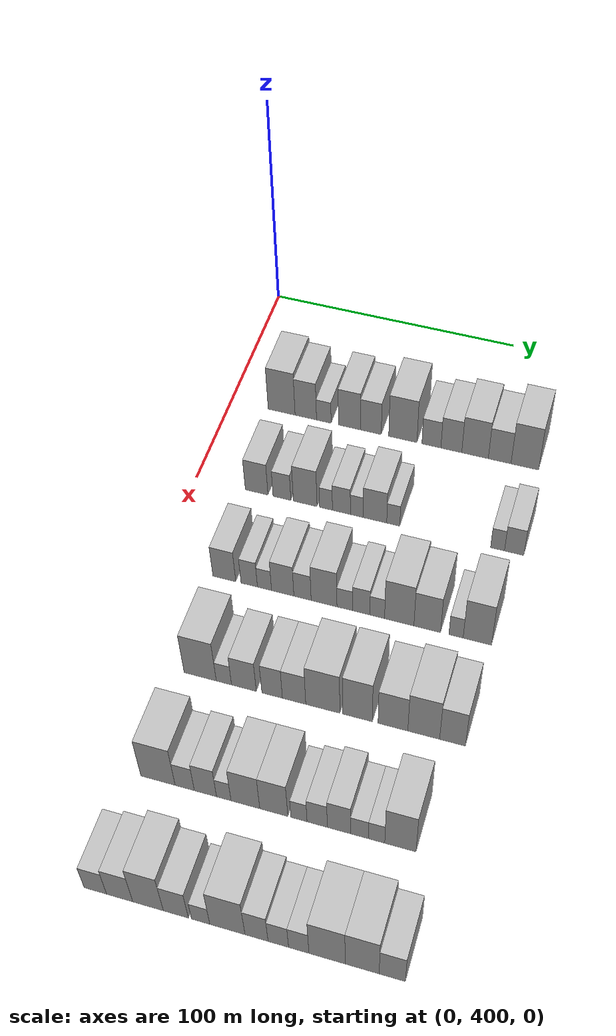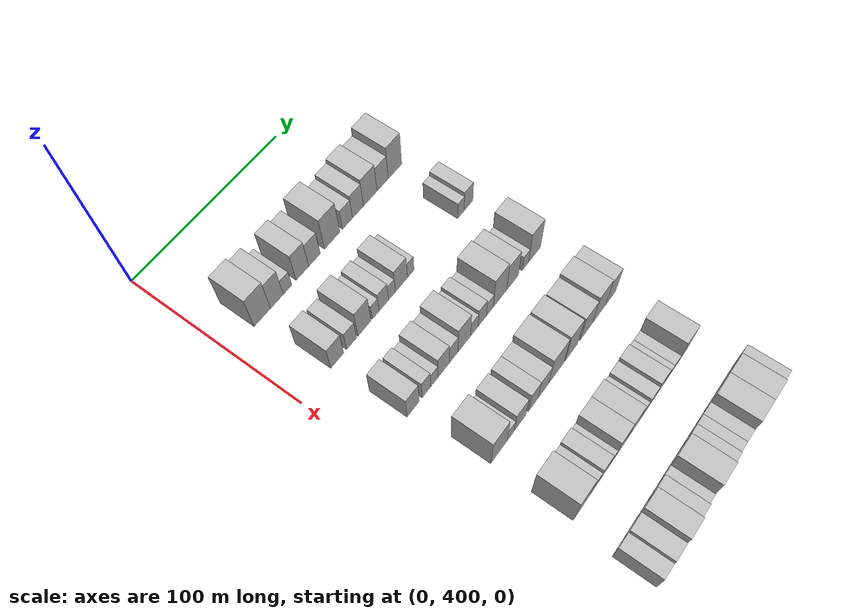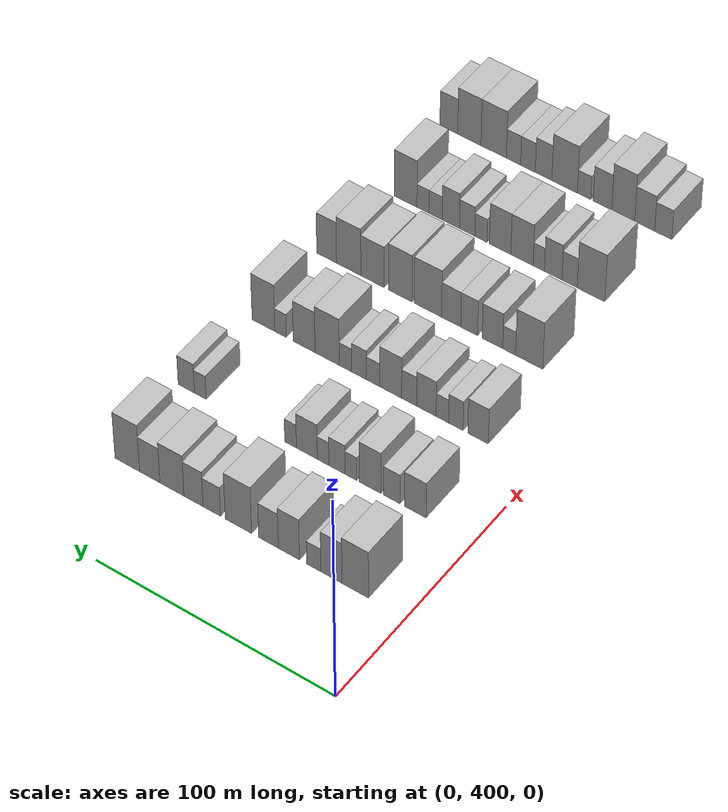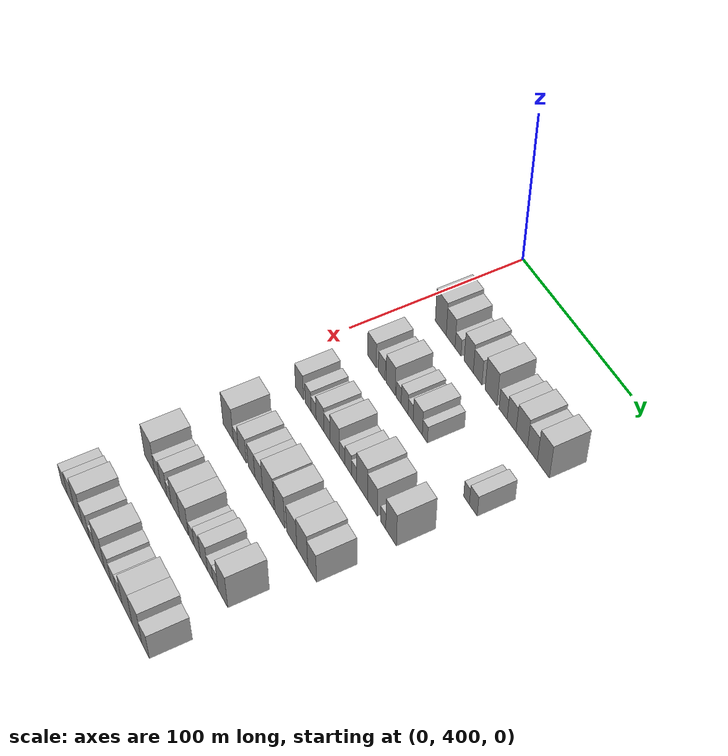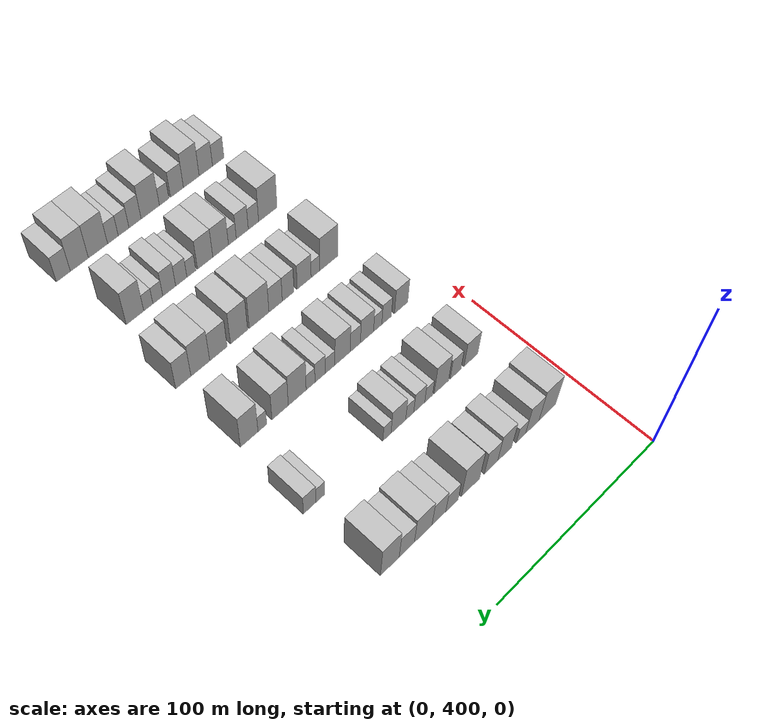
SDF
<sdf version="1.6">
 <world name="default">
  <model name="building_116">
   <static>1</static>
   <pose>50.0000 420.7711 0 0.000000 0.000000 0.000000</pose>
   <link name="link">
    <pose>0 0 12.00 0 0 0</pose>
    <collision name="collision"><geometry><box><size>20.0000 11.0274 24.0000</size></box></geometry></collision>
    <visual name="visual">
     <cast_shadows>0</cast_shadows>
     <geometry><box><size>20.0000 11.0274 24.0000</size></box></geometry>
     <material>
      <script>
       <uri>model://HANNAS_wall/materials/scripts</uri>
       <uri>model://HANNAS_wall/materials/textures</uri>
       <name>vrc/HANNAS_wall</name>
      </script>
     </material>
    </visual>
   </link>
  </model>
  <model name="building_117">
   <static>1</static>
   <pose>50.0000 430.6638 0 0.000000 0.000000 0.000000</pose>
   <link name="link">
    <pose>0 0 10.50 0 0 0</pose>
    <collision name="collision"><geometry><box><size>20.0000 8.7579 21.0000</size></box></geometry></collision>
    <visual name="visual">
     <cast_shadows>0</cast_shadows>
     <geometry><box><size>20.0000 8.7579 21.0000</size></box></geometry>
     <material>
      <script>
       <uri>model://HANNAS_wall/materials/scripts</uri>
       <uri>model://HANNAS_wall/materials/textures</uri>
       <name>vrc/HANNAS_wall</name>
      </script>
     </material>
    </visual>
   </link>
  </model>
  <model name="building_118">
   <static>1</static>
   <pose>50.0000 438.0082 0 0.000000 0.000000 0.000000</pose>
   <link name="link">
    <pose>0 0 6.00 0 0 0</pose>
    <collision name="collision"><geometry><box><size>20.0000 5.9310 12.0000</size></box></geometry></collision>
    <visual name="visual">
     <cast_shadows>0</cast_shadows>
     <geometry><box><size>20.0000 5.9310 12.0000</size></box></geometry>
     <material>
      <script>
       <uri>model://HANNAS_wall/materials/scripts</uri>
       <uri>model://HANNAS_wall/materials/textures</uri>
       <name>vrc/HANNAS_wall</name>
      </script>
     </material>
    </visual>
   </link>
  </model>
  <model name="building_119">
   <static>1</static>
   <pose>50.0000 448.4330 0 0.000000 0.000000 0.000000</pose>
   <link name="link">
    <pose>0 0 10.50 0 0 0</pose>
    <collision name="collision"><geometry><box><size>20.0000 8.9185 21.0000</size></box></geometry></collision>
    <visual name="visual">
     <cast_shadows>0</cast_shadows>
     <geometry><box><size>20.0000 8.9185 21.0000</size></box></geometry>
     <material>
      <script>
       <uri>model://HANNAS_wall/materials/scripts</uri>
       <uri>model://HANNAS_wall/materials/textures</uri>
       <name>vrc/HANNAS_wall</name>
      </script>
     </material>
    </visual>
   </link>
  </model>
  <model name="building_120">
   <static>1</static>
   <pose>50.0000 457.0442 0 0.000000 0.000000 0.000000</pose>
   <link name="link">
    <pose>0 0 9.00 0 0 0</pose>
    <collision name="collision"><geometry><box><size>20.0000 8.3039 18.0000</size></box></geometry></collision>
    <visual name="visual">
     <cast_shadows>0</cast_shadows>
     <geometry><box><size>20.0000 8.3039 18.0000</size></box></geometry>
     <material>
      <script>
       <uri>model://HANNAS_wall/materials/scripts</uri>
       <uri>model://HANNAS_wall/materials/textures</uri>
       <name>vrc/HANNAS_wall</name>
      </script>
     </material>
    </visual>
   </link>
  </model>
  <model name="building_121">
   <static>1</static>
   <pose>50.0000 469.8124 0 0.000000 0.000000 0.000000</pose>
   <link name="link">
    <pose>0 0 12.00 0 0 0</pose>
    <collision name="collision"><geometry><box><size>20.0000 11.2325 24.0000</size></box></geometry></collision>
    <visual name="visual">
     <cast_shadows>0</cast_shadows>
     <geometry><box><size>20.0000 11.2325 24.0000</size></box></geometry>
     <material>
      <script>
       <uri>model://HANNAS_wall/materials/scripts</uri>
       <uri>model://HANNAS_wall/materials/textures</uri>
       <name>vrc/HANNAS_wall</name>
      </script>
     </material>
    </visual>
   </link>
  </model>
  <model name="building_122">
   <static>1</static>
   <pose>50.0000 481.1685 0 0.000000 0.000000 0.000000</pose>
   <link name="link">
    <pose>0 0 7.50 0 0 0</pose>
    <collision name="collision"><geometry><box><size>20.0000 7.4798 15.0000</size></box></geometry></collision>
    <visual name="visual">
     <cast_shadows>0</cast_shadows>
     <geometry><box><size>20.0000 7.4798 15.0000</size></box></geometry>
     <material>
      <script>
       <uri>model://HANNAS_wall/materials/scripts</uri>
       <uri>model://HANNAS_wall/materials/textures</uri>
       <name>vrc/HANNAS_wall</name>
      </script>
     </material>
    </visual>
   </link>
  </model>
  <model name="building_123">
   <static>1</static>
   <pose>50.0000 489.0172 0 0.000000 0.000000 0.000000</pose>
   <link name="link">
    <pose>0 0 9.00 0 0 0</pose>
    <collision name="collision"><geometry><box><size>20.0000 8.2176 18.0000</size></box></geometry></collision>
    <visual name="visual">
     <cast_shadows>0</cast_shadows>
     <geometry><box><size>20.0000 8.2176 18.0000</size></box></geometry>
     <material>
      <script>
       <uri>model://HANNAS_wall/materials/scripts</uri>
       <uri>model://HANNAS_wall/materials/textures</uri>
       <name>vrc/HANNAS_wall</name>
      </script>
     </material>
    </visual>
   </link>
  </model>
  <model name="building_124">
   <static>1</static>
   <pose>50.0000 498.3271 0 0.000000 0.000000 0.000000</pose>
   <link name="link">
    <pose>0 0 10.50 0 0 0</pose>
    <collision name="collision"><geometry><box><size>20.0000 10.4022 21.0000</size></box></geometry></collision>
    <visual name="visual">
     <cast_shadows>0</cast_shadows>
     <geometry><box><size>20.0000 10.4022 21.0000</size></box></geometry>
     <material>
      <script>
       <uri>model://HANNAS_wall/materials/scripts</uri>
       <uri>model://HANNAS_wall/materials/textures</uri>
       <name>vrc/HANNAS_wall</name>
      </script>
     </material>
    </visual>
   </link>
  </model>
  <model name="building_125">
   <static>1</static>
   <pose>50.0000 507.9501 0 0.000000 0.000000 0.000000</pose>
   <link name="link">
    <pose>0 0 9.00 0 0 0</pose>
    <collision name="collision"><geometry><box><size>20.0000 8.8437 18.0000</size></box></geometry></collision>
    <visual name="visual">
     <cast_shadows>0</cast_shadows>
     <geometry><box><size>20.0000 8.8437 18.0000</size></box></geometry>
     <material>
      <script>
       <uri>model://HANNAS_wall/materials/scripts</uri>
       <uri>model://HANNAS_wall/materials/textures</uri>
       <name>vrc/HANNAS_wall</name>
      </script>
     </material>
    </visual>
   </link>
  </model>
  <model name="building_126">
   <static>1</static>
   <pose>50.0000 517.7170 0 0.000000 0.000000 0.000000</pose>
   <link name="link">
    <pose>0 0 12.00 0 0 0</pose>
    <collision name="collision"><geometry><box><size>20.0000 10.6901 24.0000</size></box></geometry></collision>
    <visual name="visual">
     <cast_shadows>0</cast_shadows>
     <geometry><box><size>20.0000 10.6901 24.0000</size></box></geometry>
     <material>
      <script>
       <uri>model://HANNAS_wall/materials/scripts</uri>
       <uri>model://HANNAS_wall/materials/textures</uri>
       <name>vrc/HANNAS_wall</name>
      </script>
     </material>
    </visual>
   </link>
  </model>
  <model name="building_248">
   <static>1</static>
   <pose>90.0000 424.0070 0 0.000000 0.000000 0.000000</pose>
   <link name="link">
    <pose>0 0 9.00 0 0 0</pose>
    <collision name="collision"><geometry><box><size>20.0000 8.9189 18.0000</size></box></geometry></collision>
    <visual name="visual">
     <cast_shadows>0</cast_shadows>
     <geometry><box><size>20.0000 8.9189 18.0000</size></box></geometry>
     <material>
      <script>
       <uri>model://HANNAS_wall/materials/scripts</uri>
       <uri>model://HANNAS_wall/materials/textures</uri>
       <name>vrc/HANNAS_wall</name>
      </script>
     </material>
    </visual>
   </link>
  </model>
  <model name="building_249">
   <static>1</static>
   <pose>90.0000 433.9471 0 0.000000 0.000000 0.000000</pose>
   <link name="link">
    <pose>0 0 7.50 0 0 0</pose>
    <collision name="collision"><geometry><box><size>20.0000 6.9612 15.0000</size></box></geometry></collision>
    <visual name="visual">
     <cast_shadows>0</cast_shadows>
     <geometry><box><size>20.0000 6.9612 15.0000</size></box></geometry>
     <material>
      <script>
       <uri>model://HANNAS_wall/materials/scripts</uri>
       <uri>model://HANNAS_wall/materials/textures</uri>
       <name>vrc/HANNAS_wall</name>
      </script>
     </material>
    </visual>
   </link>
  </model>
  <model name="building_250">
   <static>1</static>
   <pose>90.0000 443.0434 0 0.000000 0.000000 0.000000</pose>
   <link name="link">
    <pose>0 0 10.50 0 0 0</pose>
    <collision name="collision"><geometry><box><size>20.0000 9.2316 21.0000</size></box></geometry></collision>
    <visual name="visual">
     <cast_shadows>0</cast_shadows>
     <geometry><box><size>20.0000 9.2316 21.0000</size></box></geometry>
     <material>
      <script>
       <uri>model://HANNAS_wall/materials/scripts</uri>
       <uri>model://HANNAS_wall/materials/textures</uri>
       <name>vrc/HANNAS_wall</name>
      </script>
     </material>
    </visual>
   </link>
  </model>
  <model name="building_251">
   <static>1</static>
   <pose>90.0000 451.1419 0 0.000000 0.000000 0.000000</pose>
   <link name="link">
    <pose>0 0 6.00 0 0 0</pose>
    <collision name="collision"><geometry><box><size>20.0000 4.9653 12.0000</size></box></geometry></collision>
    <visual name="visual">
     <cast_shadows>0</cast_shadows>
     <geometry><box><size>20.0000 4.9653 12.0000</size></box></geometry>
     <material>
      <script>
       <uri>model://HANNAS_wall/materials/scripts</uri>
       <uri>model://HANNAS_wall/materials/textures</uri>
       <name>vrc/HANNAS_wall</name>
      </script>
     </material>
    </visual>
   </link>
  </model>
  <model name="building_252">
   <static>1</static>
   <pose>90.0000 457.0753 0 0.000000 0.000000 0.000000</pose>
   <link name="link">
    <pose>0 0 7.50 0 0 0</pose>
    <collision name="collision"><geometry><box><size>20.0000 6.9015 15.0000</size></box></geometry></collision>
    <visual name="visual">
     <cast_shadows>0</cast_shadows>
     <geometry><box><size>20.0000 6.9015 15.0000</size></box></geometry>
     <material>
      <script>
       <uri>model://HANNAS_wall/materials/scripts</uri>
       <uri>model://HANNAS_wall/materials/textures</uri>
       <name>vrc/HANNAS_wall</name>
      </script>
     </material>
    </visual>
   </link>
  </model>
  <model name="building_253">
   <static>1</static>
   <pose>90.0000 463.0140 0 0.000000 0.000000 0.000000</pose>
   <link name="link">
    <pose>0 0 6.00 0 0 0</pose>
    <collision name="collision"><geometry><box><size>20.0000 4.9760 12.0000</size></box></geometry></collision>
    <visual name="visual">
     <cast_shadows>0</cast_shadows>
     <geometry><box><size>20.0000 4.9760 12.0000</size></box></geometry>
     <material>
      <script>
       <uri>model://HANNAS_wall/materials/scripts</uri>
       <uri>model://HANNAS_wall/materials/textures</uri>
       <name>vrc/HANNAS_wall</name>
      </script>
     </material>
    </visual>
   </link>
  </model>
  <model name="building_254">
   <static>1</static>
   <pose>90.0000 469.9981 0 0.000000 0.000000 0.000000</pose>
   <link name="link">
    <pose>0 0 9.00 0 0 0</pose>
    <collision name="collision"><geometry><box><size>20.0000 8.9920 18.0000</size></box></geometry></collision>
    <visual name="visual">
     <cast_shadows>0</cast_shadows>
     <geometry><box><size>20.0000 8.9920 18.0000</size></box></geometry>
     <material>
      <script>
       <uri>model://HANNAS_wall/materials/scripts</uri>
       <uri>model://HANNAS_wall/materials/textures</uri>
       <name>vrc/HANNAS_wall</name>
      </script>
     </material>
    </visual>
   </link>
  </model>
  <model name="building_255">
   <static>1</static>
   <pose>90.0000 476.9876 0 0.000000 0.000000 0.000000</pose>
   <link name="link">
    <pose>0 0 6.00 0 0 0</pose>
    <collision name="collision"><geometry><box><size>20.0000 4.9871 12.0000</size></box></geometry></collision>
    <visual name="visual">
     <cast_shadows>0</cast_shadows>
     <geometry><box><size>20.0000 4.9871 12.0000</size></box></geometry>
     <material>
      <script>
       <uri>model://HANNAS_wall/materials/scripts</uri>
       <uri>model://HANNAS_wall/materials/textures</uri>
       <name>vrc/HANNAS_wall</name>
      </script>
     </material>
    </visual>
   </link>
  </model>
  <model name="building_256">
   <static>1</static>
   <pose>90.0000 516.2342 0 0.000000 0.000000 0.000000</pose>
   <link name="link">
    <pose>0 0 6.00 0 0 0</pose>
    <collision name="collision"><geometry><box><size>20.0000 5.1687 12.0000</size></box></geometry></collision>
    <visual name="visual">
     <cast_shadows>0</cast_shadows>
     <geometry><box><size>20.0000 5.1687 12.0000</size></box></geometry>
     <material>
      <script>
       <uri>model://HANNAS_wall/materials/scripts</uri>
       <uri>model://HANNAS_wall/materials/textures</uri>
       <name>vrc/HANNAS_wall</name>
      </script>
     </material>
    </visual>
   </link>
  </model>
  <model name="building_257">
   <static>1</static>
   <pose>90.0000 522.3938 0 0.000000 0.000000 0.000000</pose>
   <link name="link">
    <pose>0 0 7.50 0 0 0</pose>
    <collision name="collision"><geometry><box><size>20.0000 7.1506 15.0000</size></box></geometry></collision>
    <visual name="visual">
     <cast_shadows>0</cast_shadows>
     <geometry><box><size>20.0000 7.1506 15.0000</size></box></geometry>
     <material>
      <script>
       <uri>model://HANNAS_wall/materials/scripts</uri>
       <uri>model://HANNAS_wall/materials/textures</uri>
       <name>vrc/HANNAS_wall</name>
      </script>
     </material>
    </visual>
   </link>
  </model>
  <model name="building_389">
   <static>1</static>
   <pose>130.0000 425.3626 0 0.000000 0.000000 0.000000</pose>
   <link name="link">
    <pose>0 0 9.00 0 0 0</pose>
    <collision name="collision"><geometry><box><size>20.0000 8.6460 18.0000</size></box></geometry></collision>
    <visual name="visual">
     <cast_shadows>0</cast_shadows>
     <geometry><box><size>20.0000 8.6460 18.0000</size></box></geometry>
     <material>
      <script>
       <uri>model://HANNAS_wall/materials/scripts</uri>
       <uri>model://HANNAS_wall/materials/textures</uri>
       <name>vrc/HANNAS_wall</name>
      </script>
     </material>
    </visual>
   </link>
  </model>
  <model name="building_390">
   <static>1</static>
   <pose>130.0000 434.7614 0 0.000000 0.000000 0.000000</pose>
   <link name="link">
    <pose>0 0 7.50 0 0 0</pose>
    <collision name="collision"><geometry><box><size>20.0000 6.1516 15.0000</size></box></geometry></collision>
    <visual name="visual">
     <cast_shadows>0</cast_shadows>
     <geometry><box><size>20.0000 6.1516 15.0000</size></box></geometry>
     <material>
      <script>
       <uri>model://HANNAS_wall/materials/scripts</uri>
       <uri>model://HANNAS_wall/materials/textures</uri>
       <name>vrc/HANNAS_wall</name>
      </script>
     </material>
    </visual>
   </link>
  </model>
  <model name="building_391">
   <static>1</static>
   <pose>130.0000 440.4829 0 0.000000 0.000000 0.000000</pose>
   <link name="link">
    <pose>0 0 6.00 0 0 0</pose>
    <collision name="collision"><geometry><box><size>20.0000 5.2915 12.0000</size></box></geometry></collision>
    <visual name="visual">
     <cast_shadows>0</cast_shadows>
     <geometry><box><size>20.0000 5.2915 12.0000</size></box></geometry>
     <material>
      <script>
       <uri>model://HANNAS_wall/materials/scripts</uri>
       <uri>model://HANNAS_wall/materials/textures</uri>
       <name>vrc/HANNAS_wall</name>
      </script>
     </material>
    </visual>
   </link>
  </model>
  <model name="building_392">
   <static>1</static>
   <pose>130.0000 447.2966 0 0.000000 0.000000 0.000000</pose>
   <link name="link">
    <pose>0 0 9.00 0 0 0</pose>
    <collision name="collision"><geometry><box><size>20.0000 8.3359 18.0000</size></box></geometry></collision>
    <visual name="visual">
     <cast_shadows>0</cast_shadows>
     <geometry><box><size>20.0000 8.3359 18.0000</size></box></geometry>
     <material>
      <script>
       <uri>model://HANNAS_wall/materials/scripts</uri>
       <uri>model://HANNAS_wall/materials/textures</uri>
       <name>vrc/HANNAS_wall</name>
      </script>
     </material>
    </visual>
   </link>
  </model>
  <model name="building_393">
   <static>1</static>
   <pose>130.0000 454.6683 0 0.000000 0.000000 0.000000</pose>
   <link name="link">
    <pose>0 0 7.50 0 0 0</pose>
    <collision name="collision"><geometry><box><size>20.0000 6.4075 15.0000</size></box></geometry></collision>
    <visual name="visual">
     <cast_shadows>0</cast_shadows>
     <geometry><box><size>20.0000 6.4075 15.0000</size></box></geometry>
     <material>
      <script>
       <uri>model://HANNAS_wall/materials/scripts</uri>
       <uri>model://HANNAS_wall/materials/textures</uri>
       <name>vrc/HANNAS_wall</name>
      </script>
     </material>
    </visual>
   </link>
  </model>
  <model name="building_394">
   <static>1</static>
   <pose>130.0000 462.6368 0 0.000000 0.000000 0.000000</pose>
   <link name="link">
    <pose>0 0 10.50 0 0 0</pose>
    <collision name="collision"><geometry><box><size>20.0000 9.5294 21.0000</size></box></geometry></collision>
    <visual name="visual">
     <cast_shadows>0</cast_shadows>
     <geometry><box><size>20.0000 9.5294 21.0000</size></box></geometry>
     <material>
      <script>
       <uri>model://HANNAS_wall/materials/scripts</uri>
       <uri>model://HANNAS_wall/materials/textures</uri>
       <name>vrc/HANNAS_wall</name>
      </script>
     </material>
    </visual>
   </link>
  </model>
  <model name="building_395">
   <static>1</static>
   <pose>130.0000 470.2453 0 0.000000 0.000000 0.000000</pose>
   <link name="link">
    <pose>0 0 6.00 0 0 0</pose>
    <collision name="collision"><geometry><box><size>20.0000 5.6877 12.0000</size></box></geometry></collision>
    <visual name="visual">
     <cast_shadows>0</cast_shadows>
     <geometry><box><size>20.0000 5.6877 12.0000</size></box></geometry>
     <material>
      <script>
       <uri>model://HANNAS_wall/materials/scripts</uri>
       <uri>model://HANNAS_wall/materials/textures</uri>
       <name>vrc/HANNAS_wall</name>
      </script>
     </material>
    </visual>
   </link>
  </model>
  <model name="building_396">
   <static>1</static>
   <pose>130.0000 476.2890 0 0.000000 0.000000 0.000000</pose>
   <link name="link">
    <pose>0 0 7.50 0 0 0</pose>
    <collision name="collision"><geometry><box><size>20.0000 6.3997 15.0000</size></box></geometry></collision>
    <visual name="visual">
     <cast_shadows>0</cast_shadows>
     <geometry><box><size>20.0000 6.3997 15.0000</size></box></geometry>
     <material>
      <script>
       <uri>model://HANNAS_wall/materials/scripts</uri>
       <uri>model://HANNAS_wall/materials/textures</uri>
       <name>vrc/HANNAS_wall</name>
      </script>
     </material>
    </visual>
   </link>
  </model>
  <model name="building_397">
   <static>1</static>
   <pose>130.0000 482.1592 0 0.000000 0.000000 0.000000</pose>
   <link name="link">
    <pose>0 0 6.00 0 0 0</pose>
    <collision name="collision"><geometry><box><size>20.0000 5.3406 12.0000</size></box></geometry></collision>
    <visual name="visual">
     <cast_shadows>0</cast_shadows>
     <geometry><box><size>20.0000 5.3406 12.0000</size></box></geometry>
     <material>
      <script>
       <uri>model://HANNAS_wall/materials/scripts</uri>
       <uri>model://HANNAS_wall/materials/textures</uri>
       <name>vrc/HANNAS_wall</name>
      </script>
     </material>
    </visual>
   </link>
  </model>
  <model name="building_398">
   <static>1</static>
   <pose>130.0000 490.1432 0 0.000000 0.000000 0.000000</pose>
   <link name="link">
    <pose>0 0 12.00 0 0 0</pose>
    <collision name="collision"><geometry><box><size>20.0000 10.6273 24.0000</size></box></geometry></collision>
    <visual name="visual">
     <cast_shadows>0</cast_shadows>
     <geometry><box><size>20.0000 10.6273 24.0000</size></box></geometry>
     <material>
      <script>
       <uri>model://HANNAS_wall/materials/scripts</uri>
       <uri>model://HANNAS_wall/materials/textures</uri>
       <name>vrc/HANNAS_wall</name>
      </script>
     </material>
    </visual>
   </link>
  </model>
  <model name="building_399">
   <static>1</static>
   <pose>130.0000 500.2467 0 0.000000 0.000000 0.000000</pose>
   <link name="link">
    <pose>0 0 10.50 0 0 0</pose>
    <collision name="collision"><geometry><box><size>20.0000 9.5798 21.0000</size></box></geometry></collision>
    <visual name="visual">
     <cast_shadows>0</cast_shadows>
     <geometry><box><size>20.0000 9.5798 21.0000</size></box></geometry>
     <material>
      <script>
       <uri>model://HANNAS_wall/materials/scripts</uri>
       <uri>model://HANNAS_wall/materials/textures</uri>
       <name>vrc/HANNAS_wall</name>
      </script>
     </material>
    </visual>
   </link>
  </model>
  <model name="building_400">
   <static>1</static>
   <pose>130.0000 510.5665 0 0.000000 0.000000 0.000000</pose>
   <link name="link">
    <pose>0 0 6.00 0 0 0</pose>
    <collision name="collision"><geometry><box><size>20.0000 5.0598 12.0000</size></box></geometry></collision>
    <visual name="visual">
     <cast_shadows>0</cast_shadows>
     <geometry><box><size>20.0000 5.0598 12.0000</size></box></geometry>
     <material>
      <script>
       <uri>model://HANNAS_wall/materials/scripts</uri>
       <uri>model://HANNAS_wall/materials/textures</uri>
       <name>vrc/HANNAS_wall</name>
      </script>
     </material>
    </visual>
   </link>
  </model>
  <model name="building_401">
   <static>1</static>
   <pose>130.0000 518.1451 0 0.000000 0.000000 0.000000</pose>
   <link name="link">
    <pose>0 0 12.00 0 0 0</pose>
    <collision name="collision"><geometry><box><size>20.0000 10.0973 24.0000</size></box></geometry></collision>
    <visual name="visual">
     <cast_shadows>0</cast_shadows>
     <geometry><box><size>20.0000 10.0973 24.0000</size></box></geometry>
     <material>
      <script>
       <uri>model://HANNAS_wall/materials/scripts</uri>
       <uri>model://HANNAS_wall/materials/textures</uri>
       <name>vrc/HANNAS_wall</name>
      </script>
     </material>
    </visual>
   </link>
  </model>
  <model name="building_521">
   <static>1</static>
   <pose>170.0000 430.8130 0 0.000000 0.000000 0.000000</pose>
   <link name="link">
    <pose>0 0 12.00 0 0 0</pose>
    <collision name="collision"><geometry><box><size>20.0000 11.6130 24.0000</size></box></geometry></collision>
    <visual name="visual">
     <cast_shadows>0</cast_shadows>
     <geometry><box><size>20.0000 11.6130 24.0000</size></box></geometry>
     <material>
      <script>
       <uri>model://HANNAS_wall/materials/scripts</uri>
       <uri>model://HANNAS_wall/materials/textures</uri>
       <name>vrc/HANNAS_wall</name>
      </script>
     </material>
    </visual>
   </link>
  </model>
  <model name="building_522">
   <static>1</static>
   <pose>170.0000 439.3655 0 0.000000 0.000000 0.000000</pose>
   <link name="link">
    <pose>0 0 6.00 0 0 0</pose>
    <collision name="collision"><geometry><box><size>20.0000 5.4921 12.0000</size></box></geometry></collision>
    <visual name="visual">
     <cast_shadows>0</cast_shadows>
     <geometry><box><size>20.0000 5.4921 12.0000</size></box></geometry>
     <material>
      <script>
       <uri>model://HANNAS_wall/materials/scripts</uri>
       <uri>model://HANNAS_wall/materials/textures</uri>
       <name>vrc/HANNAS_wall</name>
      </script>
     </material>
    </visual>
   </link>
  </model>
  <model name="building_523">
   <static>1</static>
   <pose>170.0000 446.5312 0 0.000000 0.000000 0.000000</pose>
   <link name="link">
    <pose>0 0 9.00 0 0 0</pose>
    <collision name="collision"><geometry><box><size>20.0000 8.8392 18.0000</size></box></geometry></collision>
    <visual name="visual">
     <cast_shadows>0</cast_shadows>
     <geometry><box><size>20.0000 8.8392 18.0000</size></box></geometry>
     <material>
      <script>
       <uri>model://HANNAS_wall/materials/scripts</uri>
       <uri>model://HANNAS_wall/materials/textures</uri>
       <name>vrc/HANNAS_wall</name>
      </script>
     </material>
    </visual>
   </link>
  </model>
  <model name="building_524">
   <static>1</static>
   <pose>170.0000 456.5866 0 0.000000 0.000000 0.000000</pose>
   <link name="link">
    <pose>0 0 9.00 0 0 0</pose>
    <collision name="collision"><geometry><box><size>20.0000 7.2715 18.0000</size></box></geometry></collision>
    <visual name="visual">
     <cast_shadows>0</cast_shadows>
     <geometry><box><size>20.0000 7.2715 18.0000</size></box></geometry>
     <material>
      <script>
       <uri>model://HANNAS_wall/materials/scripts</uri>
       <uri>model://HANNAS_wall/materials/textures</uri>
       <name>vrc/HANNAS_wall</name>
      </script>
     </material>
    </visual>
   </link>
  </model>
  <model name="building_525">
   <static>1</static>
   <pose>170.0000 464.3523 0 0.000000 0.000000 0.000000</pose>
   <link name="link">
    <pose>0 0 9.00 0 0 0</pose>
    <collision name="collision"><geometry><box><size>20.0000 8.2601 18.0000</size></box></geometry></collision>
    <visual name="visual">
     <cast_shadows>0</cast_shadows>
     <geometry><box><size>20.0000 8.2601 18.0000</size></box></geometry>
     <material>
      <script>
       <uri>model://HANNAS_wall/materials/scripts</uri>
       <uri>model://HANNAS_wall/materials/textures</uri>
       <name>vrc/HANNAS_wall</name>
      </script>
     </material>
    </visual>
   </link>
  </model>
  <model name="building_526">
   <static>1</static>
   <pose>170.0000 474.4674 0 0.000000 0.000000 0.000000</pose>
   <link name="link">
    <pose>0 0 12.00 0 0 0</pose>
    <collision name="collision"><geometry><box><size>20.0000 11.9702 24.0000</size></box></geometry></collision>
    <visual name="visual">
     <cast_shadows>0</cast_shadows>
     <geometry><box><size>20.0000 11.9702 24.0000</size></box></geometry>
     <material>
      <script>
       <uri>model://HANNAS_wall/materials/scripts</uri>
       <uri>model://HANNAS_wall/materials/textures</uri>
       <name>vrc/HANNAS_wall</name>
      </script>
     </material>
    </visual>
   </link>
  </model>
  <model name="building_527">
   <static>1</static>
   <pose>170.0000 486.5912 0 0.000000 0.000000 0.000000</pose>
   <link name="link">
    <pose>0 0 12.00 0 0 0</pose>
    <collision name="collision"><geometry><box><size>20.0000 10.2773 24.0000</size></box></geometry></collision>
    <visual name="visual">
     <cast_shadows>0</cast_shadows>
     <geometry><box><size>20.0000 10.2773 24.0000</size></box></geometry>
     <material>
      <script>
       <uri>model://HANNAS_wall/materials/scripts</uri>
       <uri>model://HANNAS_wall/materials/textures</uri>
       <name>vrc/HANNAS_wall</name>
      </script>
     </material>
    </visual>
   </link>
  </model>
  <model name="building_528">
   <static>1</static>
   <pose>170.0000 498.8449 0 0.000000 0.000000 0.000000</pose>
   <link name="link">
    <pose>0 0 10.50 0 0 0</pose>
    <collision name="collision"><geometry><box><size>20.0000 10.2300 21.0000</size></box></geometry></collision>
    <visual name="visual">
     <cast_shadows>0</cast_shadows>
     <geometry><box><size>20.0000 10.2300 21.0000</size></box></geometry>
     <material>
      <script>
       <uri>model://HANNAS_wall/materials/scripts</uri>
       <uri>model://HANNAS_wall/materials/textures</uri>
       <name>vrc/HANNAS_wall</name>
      </script>
     </material>
    </visual>
   </link>
  </model>
  <model name="building_529">
   <static>1</static>
   <pose>170.0000 509.4001 0 0.000000 0.000000 0.000000</pose>
   <link name="link">
    <pose>0 0 12.00 0 0 0</pose>
    <collision name="collision"><geometry><box><size>20.0000 10.8805 24.0000</size></box></geometry></collision>
    <visual name="visual">
     <cast_shadows>0</cast_shadows>
     <geometry><box><size>20.0000 10.8805 24.0000</size></box></geometry>
     <material>
      <script>
       <uri>model://HANNAS_wall/materials/scripts</uri>
       <uri>model://HANNAS_wall/materials/textures</uri>
       <name>vrc/HANNAS_wall</name>
      </script>
     </material>
    </visual>
   </link>
  </model>
  <model name="building_530">
   <static>1</static>
   <pose>170.0000 519.2264 0 0.000000 0.000000 0.000000</pose>
   <link name="link">
    <pose>0 0 10.50 0 0 0</pose>
    <collision name="collision"><geometry><box><size>20.0000 8.7721 21.0000</size></box></geometry></collision>
    <visual name="visual">
     <cast_shadows>0</cast_shadows>
     <geometry><box><size>20.0000 8.7721 21.0000</size></box></geometry>
     <material>
      <script>
       <uri>model://HANNAS_wall/materials/scripts</uri>
       <uri>model://HANNAS_wall/materials/textures</uri>
       <name>vrc/HANNAS_wall</name>
      </script>
     </material>
    </visual>
   </link>
  </model>
  <model name="building_666">
   <static>1</static>
   <pose>210.0000 430.8978 0 0.000000 0.000000 0.000000</pose>
   <link name="link">
    <pose>0 0 12.00 0 0 0</pose>
    <collision name="collision"><geometry><box><size>20.0000 11.8619 24.0000</size></box></geometry></collision>
    <visual name="visual">
     <cast_shadows>0</cast_shadows>
     <geometry><box><size>20.0000 11.8619 24.0000</size></box></geometry>
     <material>
      <script>
       <uri>model://HANNAS_wall/materials/scripts</uri>
       <uri>model://HANNAS_wall/materials/textures</uri>
       <name>vrc/HANNAS_wall</name>
      </script>
     </material>
    </visual>
   </link>
  </model>
  <model name="building_667">
   <static>1</static>
   <pose>210.0000 440.1302 0 0.000000 0.000000 0.000000</pose>
   <link name="link">
    <pose>0 0 7.50 0 0 0</pose>
    <collision name="collision"><geometry><box><size>20.0000 6.6029 15.0000</size></box></geometry></collision>
    <visual name="visual">
     <cast_shadows>0</cast_shadows>
     <geometry><box><size>20.0000 6.6029 15.0000</size></box></geometry>
     <material>
      <script>
       <uri>model://HANNAS_wall/materials/scripts</uri>
       <uri>model://HANNAS_wall/materials/textures</uri>
       <name>vrc/HANNAS_wall</name>
      </script>
     </material>
    </visual>
   </link>
  </model>
  <model name="building_668">
   <static>1</static>
   <pose>210.0000 447.2183 0 0.000000 0.000000 0.000000</pose>
   <link name="link">
    <pose>0 0 9.00 0 0 0</pose>
    <collision name="collision"><geometry><box><size>20.0000 7.5732 18.0000</size></box></geometry></collision>
    <visual name="visual">
     <cast_shadows>0</cast_shadows>
     <geometry><box><size>20.0000 7.5732 18.0000</size></box></geometry>
     <material>
      <script>
       <uri>model://HANNAS_wall/materials/scripts</uri>
       <uri>model://HANNAS_wall/materials/textures</uri>
       <name>vrc/HANNAS_wall</name>
      </script>
     </material>
    </visual>
   </link>
  </model>
  <model name="building_669">
   <static>1</static>
   <pose>210.0000 453.4733 0 0.000000 0.000000 0.000000</pose>
   <link name="link">
    <pose>0 0 6.00 0 0 0</pose>
    <collision name="collision"><geometry><box><size>20.0000 4.9370 12.0000</size></box></geometry></collision>
    <visual name="visual">
     <cast_shadows>0</cast_shadows>
     <geometry><box><size>20.0000 4.9370 12.0000</size></box></geometry>
     <material>
      <script>
       <uri>model://HANNAS_wall/materials/scripts</uri>
       <uri>model://HANNAS_wall/materials/textures</uri>
       <name>vrc/HANNAS_wall</name>
      </script>
     </material>
    </visual>
   </link>
  </model>
  <model name="building_670">
   <static>1</static>
   <pose>210.0000 460.8120 0 0.000000 0.000000 0.000000</pose>
   <link name="link">
    <pose>0 0 10.50 0 0 0</pose>
    <collision name="collision"><geometry><box><size>20.0000 9.7403 21.0000</size></box></geometry></collision>
    <visual name="visual">
     <cast_shadows>0</cast_shadows>
     <geometry><box><size>20.0000 9.7403 21.0000</size></box></geometry>
     <material>
      <script>
       <uri>model://HANNAS_wall/materials/scripts</uri>
       <uri>model://HANNAS_wall/materials/textures</uri>
       <name>vrc/HANNAS_wall</name>
      </script>
     </material>
    </visual>
   </link>
  </model>
  <model name="building_671">
   <static>1</static>
   <pose>210.0000 470.4005 0 0.000000 0.000000 0.000000</pose>
   <link name="link">
    <pose>0 0 10.50 0 0 0</pose>
    <collision name="collision"><geometry><box><size>20.0000 9.4369 21.0000</size></box></geometry></collision>
    <visual name="visual">
     <cast_shadows>0</cast_shadows>
     <geometry><box><size>20.0000 9.4369 21.0000</size></box></geometry>
     <material>
      <script>
       <uri>model://HANNAS_wall/materials/scripts</uri>
       <uri>model://HANNAS_wall/materials/textures</uri>
       <name>vrc/HANNAS_wall</name>
      </script>
     </material>
    </visual>
   </link>
  </model>
  <model name="building_672">
   <static>1</static>
   <pose>210.0000 478.8191 0 0.000000 0.000000 0.000000</pose>
   <link name="link">
    <pose>0 0 6.00 0 0 0</pose>
    <collision name="collision"><geometry><box><size>20.0000 5.4003 12.0000</size></box></geometry></collision>
    <visual name="visual">
     <cast_shadows>0</cast_shadows>
     <geometry><box><size>20.0000 5.4003 12.0000</size></box></geometry>
     <material>
      <script>
       <uri>model://HANNAS_wall/materials/scripts</uri>
       <uri>model://HANNAS_wall/materials/textures</uri>
       <name>vrc/HANNAS_wall</name>
      </script>
     </material>
    </visual>
   </link>
  </model>
  <model name="building_673">
   <static>1</static>
   <pose>210.0000 484.8994 0 0.000000 0.000000 0.000000</pose>
   <link name="link">
    <pose>0 0 7.50 0 0 0</pose>
    <collision name="collision"><geometry><box><size>20.0000 6.7603 15.0000</size></box></geometry></collision>
    <visual name="visual">
     <cast_shadows>0</cast_shadows>
     <geometry><box><size>20.0000 6.7603 15.0000</size></box></geometry>
     <material>
      <script>
       <uri>model://HANNAS_wall/materials/scripts</uri>
       <uri>model://HANNAS_wall/materials/textures</uri>
       <name>vrc/HANNAS_wall</name>
      </script>
     </material>
    </visual>
   </link>
  </model>
  <model name="building_674">
   <static>1</static>
   <pose>210.0000 492.1196 0 0.000000 0.000000 0.000000</pose>
   <link name="link">
    <pose>0 0 9.00 0 0 0</pose>
    <collision name="collision"><geometry><box><size>20.0000 7.6801 18.0000</size></box></geometry></collision>
    <visual name="visual">
     <cast_shadows>0</cast_shadows>
     <geometry><box><size>20.0000 7.6801 18.0000</size></box></geometry>
     <material>
      <script>
       <uri>model://HANNAS_wall/materials/scripts</uri>
       <uri>model://HANNAS_wall/materials/textures</uri>
       <name>vrc/HANNAS_wall</name>
      </script>
     </material>
    </visual>
   </link>
  </model>
  <model name="building_675">
   <static>1</static>
   <pose>210.0000 498.8803 0 0.000000 0.000000 0.000000</pose>
   <link name="link">
    <pose>0 0 6.00 0 0 0</pose>
    <collision name="collision"><geometry><box><size>20.0000 5.8413 12.0000</size></box></geometry></collision>
    <visual name="visual">
     <cast_shadows>0</cast_shadows>
     <geometry><box><size>20.0000 5.8413 12.0000</size></box></geometry>
     <material>
      <script>
       <uri>model://HANNAS_wall/materials/scripts</uri>
       <uri>model://HANNAS_wall/materials/textures</uri>
       <name>vrc/HANNAS_wall</name>
      </script>
     </material>
    </visual>
   </link>
  </model>
  <model name="building_676">
   <static>1</static>
   <pose>210.0000 504.4911 0 0.000000 0.000000 0.000000</pose>
   <link name="link">
    <pose>0 0 6.00 0 0 0</pose>
    <collision name="collision"><geometry><box><size>20.0000 5.3802 12.0000</size></box></geometry></collision>
    <visual name="visual">
     <cast_shadows>0</cast_shadows>
     <geometry><box><size>20.0000 5.3802 12.0000</size></box></geometry>
     <material>
      <script>
       <uri>model://HANNAS_wall/materials/scripts</uri>
       <uri>model://HANNAS_wall/materials/textures</uri>
       <name>vrc/HANNAS_wall</name>
      </script>
     </material>
    </visual>
   </link>
  </model>
  <model name="building_677">
   <static>1</static>
   <pose>210.0000 512.2721 0 0.000000 0.000000 0.000000</pose>
   <link name="link">
    <pose>0 0 12.00 0 0 0</pose>
    <collision name="collision"><geometry><box><size>20.0000 10.1819 24.0000</size></box></geometry></collision>
    <visual name="visual">
     <cast_shadows>0</cast_shadows>
     <geometry><box><size>20.0000 10.1819 24.0000</size></box></geometry>
     <material>
      <script>
       <uri>model://HANNAS_wall/materials/scripts</uri>
       <uri>model://HANNAS_wall/materials/textures</uri>
       <name>vrc/HANNAS_wall</name>
      </script>
     </material>
    </visual>
   </link>
  </model>
  <model name="building_800">
   <static>1</static>
   <pose>250.0000 425.6864 0 0.000000 0.000000 0.000000</pose>
   <link name="link">
    <pose>0 0 7.50 0 0 0</pose>
    <collision name="collision"><geometry><box><size>20.0000 7.4358 15.0000</size></box></geometry></collision>
    <visual name="visual">
     <cast_shadows>0</cast_shadows>
     <geometry><box><size>20.0000 7.4358 15.0000</size></box></geometry>
     <material>
      <script>
       <uri>model://HANNAS_wall/materials/scripts</uri>
       <uri>model://HANNAS_wall/materials/textures</uri>
       <name>vrc/HANNAS_wall</name>
      </script>
     </material>
    </visual>
   </link>
  </model>
  <model name="building_801">
   <static>1</static>
   <pose>250.0000 433.7191 0 0.000000 0.000000 0.000000</pose>
   <link name="link">
    <pose>0 0 9.00 0 0 0</pose>
    <collision name="collision"><geometry><box><size>20.0000 8.6297 18.0000</size></box></geometry></collision>
    <visual name="visual">
     <cast_shadows>0</cast_shadows>
     <geometry><box><size>20.0000 8.6297 18.0000</size></box></geometry>
     <material>
      <script>
       <uri>model://HANNAS_wall/materials/scripts</uri>
       <uri>model://HANNAS_wall/materials/textures</uri>
       <name>vrc/HANNAS_wall</name>
      </script>
     </material>
    </visual>
   </link>
  </model>
  <model name="building_802">
   <static>1</static>
   <pose>250.0000 443.0464 0 0.000000 0.000000 0.000000</pose>
   <link name="link">
    <pose>0 0 12.00 0 0 0</pose>
    <collision name="collision"><geometry><box><size>20.0000 10.0249 24.0000</size></box></geometry></collision>
    <visual name="visual">
     <cast_shadows>0</cast_shadows>
     <geometry><box><size>20.0000 10.0249 24.0000</size></box></geometry>
     <material>
      <script>
       <uri>model://HANNAS_wall/materials/scripts</uri>
       <uri>model://HANNAS_wall/materials/textures</uri>
       <name>vrc/HANNAS_wall</name>
      </script>
     </material>
    </visual>
   </link>
  </model>
  <model name="building_803">
   <static>1</static>
   <pose>250.0000 452.1490 0 0.000000 0.000000 0.000000</pose>
   <link name="link">
    <pose>0 0 9.00 0 0 0</pose>
    <collision name="collision"><geometry><box><size>20.0000 8.1803 18.0000</size></box></geometry></collision>
    <visual name="visual">
     <cast_shadows>0</cast_shadows>
     <geometry><box><size>20.0000 8.1803 18.0000</size></box></geometry>
     <material>
      <script>
       <uri>model://HANNAS_wall/materials/scripts</uri>
       <uri>model://HANNAS_wall/materials/textures</uri>
       <name>vrc/HANNAS_wall</name>
      </script>
     </material>
    </visual>
   </link>
  </model>
  <model name="building_804">
   <static>1</static>
   <pose>250.0000 460.1946 0 0.000000 0.000000 0.000000</pose>
   <link name="link">
    <pose>0 0 6.00 0 0 0</pose>
    <collision name="collision"><geometry><box><size>20.0000 5.9109 12.0000</size></box></geometry></collision>
    <visual name="visual">
     <cast_shadows>0</cast_shadows>
     <geometry><box><size>20.0000 5.9109 12.0000</size></box></geometry>
     <material>
      <script>
       <uri>model://HANNAS_wall/materials/scripts</uri>
       <uri>model://HANNAS_wall/materials/textures</uri>
       <name>vrc/HANNAS_wall</name>
      </script>
     </material>
    </visual>
   </link>
  </model>
  <model name="building_805">
   <static>1</static>
   <pose>250.0000 468.7921 0 0.000000 0.000000 0.000000</pose>
   <link name="link">
    <pose>0 0 12.00 0 0 0</pose>
    <collision name="collision"><geometry><box><size>20.0000 11.2842 24.0000</size></box></geometry></collision>
    <visual name="visual">
     <cast_shadows>0</cast_shadows>
     <geometry><box><size>20.0000 11.2842 24.0000</size></box></geometry>
     <material>
      <script>
       <uri>model://HANNAS_wall/materials/scripts</uri>
       <uri>model://HANNAS_wall/materials/textures</uri>
       <name>vrc/HANNAS_wall</name>
      </script>
     </material>
    </visual>
   </link>
  </model>
  <model name="building_806">
   <static>1</static>
   <pose>250.0000 478.1163 0 0.000000 0.000000 0.000000</pose>
   <link name="link">
    <pose>0 0 9.00 0 0 0</pose>
    <collision name="collision"><geometry><box><size>20.0000 7.3641 18.0000</size></box></geometry></collision>
    <visual name="visual">
     <cast_shadows>0</cast_shadows>
     <geometry><box><size>20.0000 7.3641 18.0000</size></box></geometry>
     <material>
      <script>
       <uri>model://HANNAS_wall/materials/scripts</uri>
       <uri>model://HANNAS_wall/materials/textures</uri>
       <name>vrc/HANNAS_wall</name>
      </script>
     </material>
    </visual>
   </link>
  </model>
  <model name="building_807">
   <static>1</static>
   <pose>250.0000 485.0401 0 0.000000 0.000000 0.000000</pose>
   <link name="link">
    <pose>0 0 7.50 0 0 0</pose>
    <collision name="collision"><geometry><box><size>20.0000 6.4835 15.0000</size></box></geometry></collision>
    <visual name="visual">
     <cast_shadows>0</cast_shadows>
     <geometry><box><size>20.0000 6.4835 15.0000</size></box></geometry>
     <material>
      <script>
       <uri>model://HANNAS_wall/materials/scripts</uri>
       <uri>model://HANNAS_wall/materials/textures</uri>
       <name>vrc/HANNAS_wall</name>
      </script>
     </material>
    </visual>
   </link>
  </model>
  <model name="building_808">
   <static>1</static>
   <pose>250.0000 491.4857 0 0.000000 0.000000 0.000000</pose>
   <link name="link">
    <pose>0 0 7.50 0 0 0</pose>
    <collision name="collision"><geometry><box><size>20.0000 6.4077 15.0000</size></box></geometry></collision>
    <visual name="visual">
     <cast_shadows>0</cast_shadows>
     <geometry><box><size>20.0000 6.4077 15.0000</size></box></geometry>
     <material>
      <script>
       <uri>model://HANNAS_wall/materials/scripts</uri>
       <uri>model://HANNAS_wall/materials/textures</uri>
       <name>vrc/HANNAS_wall</name>
      </script>
     </material>
    </visual>
   </link>
  </model>
  <model name="building_809">
   <static>1</static>
   <pose>250.0000 500.3752 0 0.000000 0.000000 0.000000</pose>
   <link name="link">
    <pose>0 0 12.00 0 0 0</pose>
    <collision name="collision"><geometry><box><size>20.0000 11.3712 24.0000</size></box></geometry></collision>
    <visual name="visual">
     <cast_shadows>0</cast_shadows>
     <geometry><box><size>20.0000 11.3712 24.0000</size></box></geometry>
     <material>
      <script>
       <uri>model://HANNAS_wall/materials/scripts</uri>
       <uri>model://HANNAS_wall/materials/textures</uri>
       <name>vrc/HANNAS_wall</name>
      </script>
     </material>
    </visual>
   </link>
  </model>
  <model name="building_810">
   <static>1</static>
   <pose>250.0000 511.3237 0 0.000000 0.000000 0.000000</pose>
   <link name="link">
    <pose>0 0 12.00 0 0 0</pose>
    <collision name="collision"><geometry><box><size>20.0000 10.5258 24.0000</size></box></geometry></collision>
    <visual name="visual">
     <cast_shadows>0</cast_shadows>
     <geometry><box><size>20.0000 10.5258 24.0000</size></box></geometry>
     <material>
      <script>
       <uri>model://HANNAS_wall/materials/scripts</uri>
       <uri>model://HANNAS_wall/materials/textures</uri>
       <name>vrc/HANNAS_wall</name>
      </script>
     </material>
    </visual>
   </link>
  </model>
  <model name="building_811">
   <static>1</static>
   <pose>250.0000 520.6256 0 0.000000 0.000000 0.000000</pose>
   <link name="link">
    <pose>0 0 9.00 0 0 0</pose>
    <collision name="collision"><geometry><box><size>20.0000 8.0779 18.0000</size></box></geometry></collision>
    <visual name="visual">
     <cast_shadows>0</cast_shadows>
     <geometry><box><size>20.0000 8.0779 18.0000</size></box></geometry>
     <material>
      <script>
       <uri>model://HANNAS_wall/materials/scripts</uri>
       <uri>model://HANNAS_wall/materials/textures</uri>
       <name>vrc/HANNAS_wall</name>
      </script>
     </material>
    </visual>
   </link>
  </model>
 </world>
</sdf>
